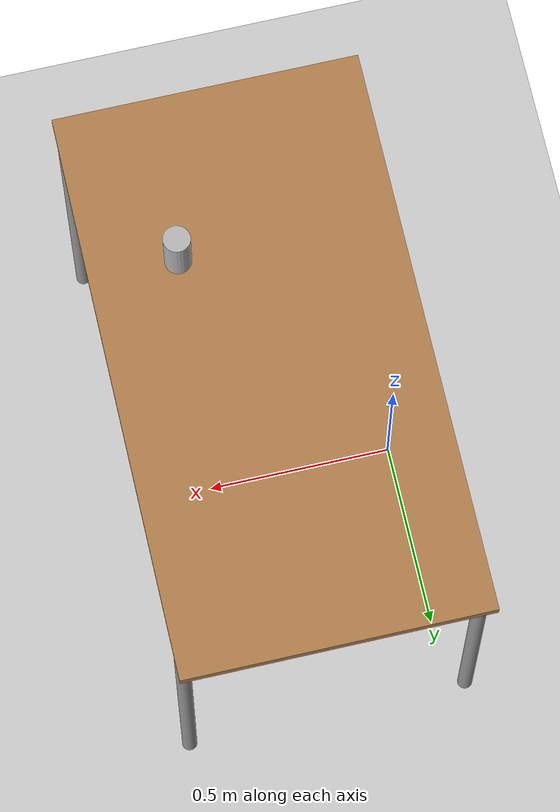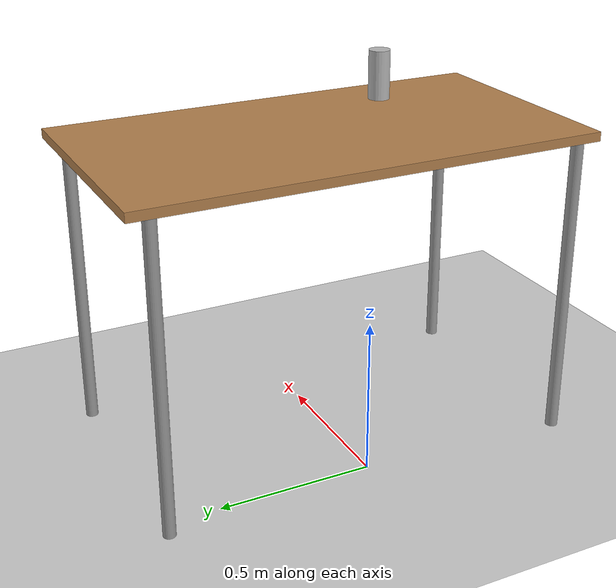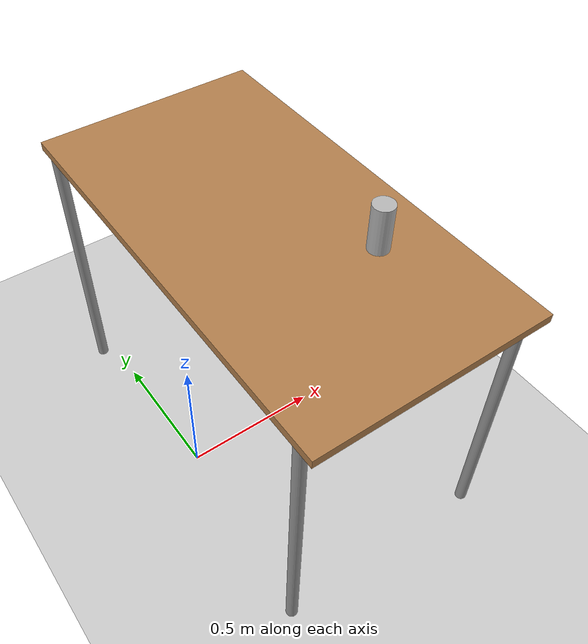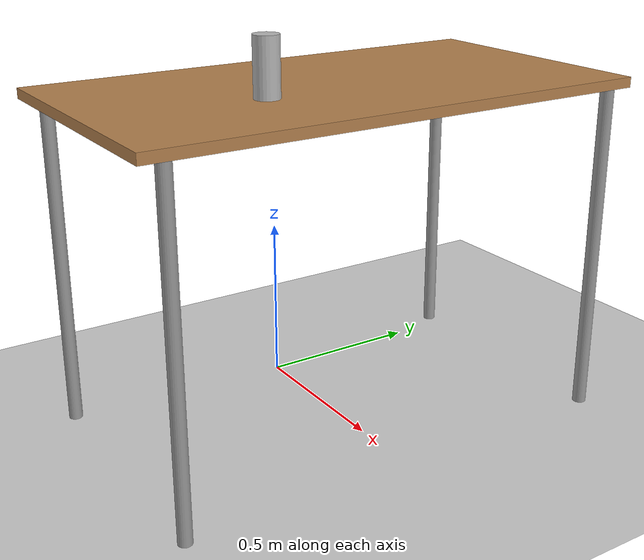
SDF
<?xml version="1.0" ?>
<sdf version="1.5">
  <world name="default">

		<!-- Setup camera initial pose -->
    <gui>
			<camera name="gzclient_camera">
				<pose>3.64 0 3.36 0 0.57 3.1414</pose>
			</camera>
    </gui>

    <!-- A global light source -->
    <include>
      <uri>model://sun</uri>
	    <pose>0 0 0 0 0 0</pose>
    </include>

    <!-- A ground plane -->
    <include>
      <uri>model://ground_plane</uri>
      <pose>0 0 0 0 0 0</pose>
    </include>

		<!-- Add table -->
		<include>
			<uri>model://table</uri>
			<pose>0.33 0.0 0.0 0 0 1.5707</pose>
		</include>

		<!-- Add beer can -->
		<include>
			<uri>model://beer</uri>
			<pose>0.5 -0.3 1.0 0 0 0</pose>
		</include>

		<!-- keep barebones scene -->
    <scene>
    </scene>

  </world>
</sdf>

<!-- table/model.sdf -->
<sdf version="1.5">
  <model name="table">
    <static>true</static>
    <link name="link">
      <collision name="surface">
        <pose>0 0 1.0 0 0 0</pose>
        <geometry>
          <box>
            <size>1.5 0.8 0.03</size>
          </box>
        </geometry>
        <surface>
          <friction>
            <ode>
              <mu>1000.0</mu>
              <mu2>1000.0</mu2>
            </ode>
          </friction>
          <contact>
            <ode>
							<max_vel>0.1</max_vel>
							<soft_cfm>0.8</soft_cfm>
							<soft_erp>0.8</soft_erp>
							<kd>2500</kd>
							<kp>10</kp>
							<min_depth>0.001</min_depth>
            </ode>
          </contact>
        </surface>
      </collision>
      <visual name="visual1">
        <pose>0 0 1.0 0 0 0</pose>
        <geometry>
          <box>
            <size>1.5 0.8 0.03</size>
          </box>
        </geometry>
        <material>
          <script>
            <uri>file://media/materials/scripts/gazebo.material</uri>
            <name>Gazebo/Wood</name>
          </script>
        </material>
      </visual>
      <collision name="front_left_leg">
        <pose>0.68 0.38 0.5 0 0 0</pose>
        <geometry>
          <cylinder>
            <radius>0.02</radius>
            <length>1.0</length>
          </cylinder>
        </geometry>
      </collision>
      <visual name="front_left_leg">
        <pose>0.68 0.38 0.5 0 0 0</pose>
        <geometry>
          <cylinder>
            <radius>0.02</radius>
            <length>1.0</length>
          </cylinder>
        </geometry>
        <material>
          <script>
            <uri>file://media/materials/scripts/gazebo.material</uri>
            <name>Gazebo/Grey</name>
          </script>
        </material>
      </visual>
      <collision name="front_right_leg">
        <pose>0.68 -0.38 0.5 0 0 0</pose>
        <geometry>
          <cylinder>
            <radius>0.02</radius>
            <length>1.0</length>
          </cylinder>
        </geometry>
      </collision>
      <visual name="front_right_leg">
        <pose>0.68 -0.38 0.5 0 0 0</pose>
        <geometry>
          <cylinder>
            <radius>0.02</radius>
            <length>1.0</length>
          </cylinder>
        </geometry>
        <material>
          <script>
            <uri>file://media/materials/scripts/gazebo.material</uri>
            <name>Gazebo/Grey</name>
          </script>
        </material>
      </visual>
      <collision name="back_right_leg">
        <pose>-0.68 -0.38 0.5 0 0 0</pose>
        <geometry>
          <cylinder>
            <radius>0.02</radius>
            <length>1.0</length>
          </cylinder>
        </geometry>
      </collision>
      <visual name="back_right_leg">
        <pose>-0.68 -0.38 0.5 0 0 0</pose>
        <geometry>
          <cylinder>
            <radius>0.02</radius>
            <length>1.0</length>
          </cylinder>
        </geometry>
        <material>
          <script>
            <uri>file://media/materials/scripts/gazebo.material</uri>
            <name>Gazebo/Grey</name>
          </script>
        </material>
      </visual>
      <collision name="back_left_leg">
        <pose>-0.68 0.38 0.5 0 0 0</pose>
        <geometry>
          <cylinder>
            <radius>0.02</radius>
            <length>1.0</length>
          </cylinder>
        </geometry>
      </collision>
      <visual name="back_left_leg">
        <pose>-0.68 0.38 0.5 0 0 0</pose>
        <geometry>
          <cylinder>
            <radius>0.02</radius>
            <length>1.0</length>
          </cylinder>
        </geometry>
        <material>
          <script>
            <uri>file://media/materials/scripts/gazebo.material</uri>
            <name>Gazebo/Grey</name>
          </script>
        </material>
      </visual>
    </link>
  </model>
</sdf>

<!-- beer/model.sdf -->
<sdf version="1.5">
  <model name="beer">
    <link name="link">
      <pose>0 0 0.115 0 0 0</pose>
      <inertial>
        <mass>0.390</mass>
        <inertia>
          <ixx>0.00058</ixx>
          <ixy>0</ixy>
          <ixz>0</ixz>
          <iyy>0.00058</iyy>
          <iyz>0</iyz>
          <izz>0.00019</izz>
        </inertia>
      </inertial>
      <collision name="collision">
        <geometry>
          <cylinder>
            <radius>0.035</radius>
            <length>0.16</length>
          </cylinder>
        </geometry>
      </collision>
      <visual name="visual">
        <geometry>
          <cylinder>
            <radius>0.035</radius>
            <length>0.16</length>
          </cylinder>
        </geometry>
        <material>
          <script>
            <uri>model://beer/materials/scripts</uri>
            <uri>model://beer/materials/textures</uri>
            <name>Beer/Diffuse</name>
          </script>
        </material>
      </visual>
    </link>
  </model>
</sdf>
